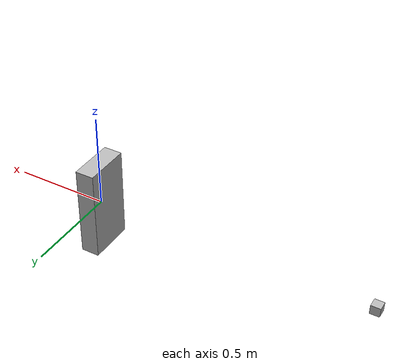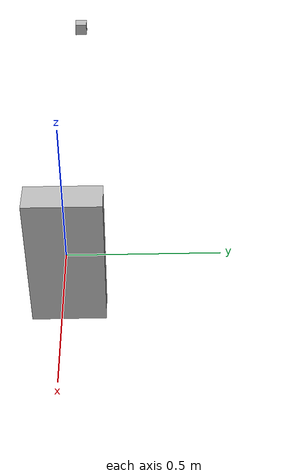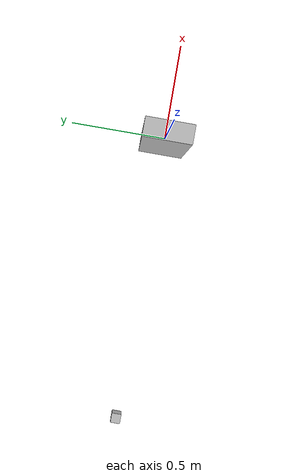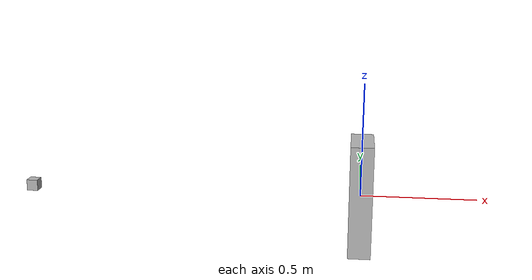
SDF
<?xml version="1.0" encoding="UTF-8"?>
<sdf version="1.6">

    <model name="ray_sensor_box">
      <pose>-1.5 0.0 0.0 0.0 0.0 0.0</pose>
      <link name="ray_link">
        <visual name="visual_box">
          <geometry>
            <box>
              <size>0.05 0.05 0.05</size>
            </box>
          </geometry>
        </visual>
        <collision name="collision_box">
          <geometry>
            <box>
              <size>0.05 0.05 0.05</size>
            </box>
          </geometry>
          <laser_retro>100.0</laser_retro>
        </collision>

        <!-- ray sensor -->
        <sensor name="sensor_ray" type="ray">
          <ray>
            <scan>
              <horizontal>
                <samples>300</samples>
                <resolution>1.0</resolution>
                <min_angle>-2.35619</min_angle>
                <max_angle>2.35619</max_angle>
              </horizontal>
              <vertical>
                <samples>100</samples>
                <resolution>1.0</resolution>
                <min_angle>-0.7853</min_angle>
                <max_angle>0.7853</max_angle>
              </vertical>
            </scan>
            <range>
              <min>0.05</min>
              <max>50.0</max>
            </range>
          </ray>
          <always_on>true</always_on>
          <update_rate>1.0</update_rate>
          <plugin name="pc2" filename="libgazebo_ros_ray_sensor.so">
            <ros>
              <namespace>/ray</namespace>
              <remapping>~/out:=pointcloud2</remapping>
            </ros>
            <output_type>sensor_msgs/PointCloud2</output_type>
          </plugin>
          <plugin name="pc" filename="libgazebo_ros_ray_sensor.so">
            <ros>
              <namespace>/ray</namespace>
              <remapping>~/out:=pointcloud</remapping>
            </ros>
            <output_type>sensor_msgs/PointCloud</output_type>
          </plugin>
          <plugin name="laserscan" filename="libgazebo_ros_ray_sensor.so">
            <ros>
              <namespace>/ray</namespace>
              <remapping>~/out:=laserscan</remapping>
            </ros>
            <output_type>sensor_msgs/LaserScan</output_type>
          </plugin>
          <plugin name="range" filename="libgazebo_ros_ray_sensor.so">
            <ros>
              <namespace>/ray</namespace>
              <remapping>~/out:=range</remapping>
            </ros>
            <output_type>sensor_msgs/Range</output_type>
          </plugin>
        </sensor>

        <!-- gpu_ray sensor producing PointCloud / LaserScan -->
        <sensor name="sensor_gpu_ray" type="gpu_ray">
          <ray>
            <scan>
              <horizontal>
                <samples>300</samples>
                <resolution>1.0</resolution>
                <min_angle>-0.5236</min_angle>
                <max_angle>0.5236</max_angle>
              </horizontal>
            </scan>
            <range>
              <min>0.05</min>
              <max>50.0</max>
            </range>
          </ray>
          <always_on>true</always_on>
          <update_rate>1.0</update_rate>
          <plugin name="pc2_gpu" filename="libgazebo_ros_ray_sensor.so">
            <ros>
              <namespace>/gpu_ray</namespace>
              <remapping>~/out:=pointcloud2</remapping>
            </ros>
            <output_type>sensor_msgs/PointCloud2</output_type>
          </plugin>
          <plugin name="pc_gpu" filename="libgazebo_ros_ray_sensor.so">
            <ros>
              <namespace>/gpu_ray</namespace>
              <remapping>~/out:=pointcloud</remapping>
            </ros>
            <output_type>sensor_msgs/PointCloud</output_type>
          </plugin>
          <plugin name="laserscan_gpu" filename="libgazebo_ros_ray_sensor.so">
            <ros>
              <namespace>/gpu_ray</namespace>
              <remapping>~/out:=laserscan</remapping>
            </ros>
            <output_type>sensor_msgs/LaserScan</output_type>
          </plugin>
          <plugin name="range_gpu" filename="libgazebo_ros_ray_sensor.so">
            <ros>
              <namespace>/gpu_ray</namespace>
              <remapping>~/out:=range</remapping>
            </ros>
            <output_type>sensor_msgs/Range</output_type>
          </plugin>
        </sensor>

      </link>
    </model>

    <model name="box">

      <inertial>
        <mass>0.01</mass>
        <inertia>
          <ixx>6.409e-05</ixx>
          <ixy>0</ixy>
          <ixz>0</ixz>
          <iyy>6.409e-05</iyy>
          <iyz>0</iyz>
          <izz>5.593e-05</izz>
        </inertia>
        <pose>0 0 0 0 -0 0</pose>
      </inertial>

      <pose>0.0 0.0 0.0 0.0 0.0 0.0</pose>
      <link name="base_link">
        <visual name="visual">
          <geometry>
            <box>
              <size>0.1 0.25 0.5</size>
            </box>
          </geometry>
        </visual>
        <collision name="collision">
          <geometry>
            <box>
              <size>0.1 0.25 0.5</size>
            </box>
          </geometry>
          <laser_retro>100.0</laser_retro>
        </collision>
      </link>
    </model>

</sdf>
